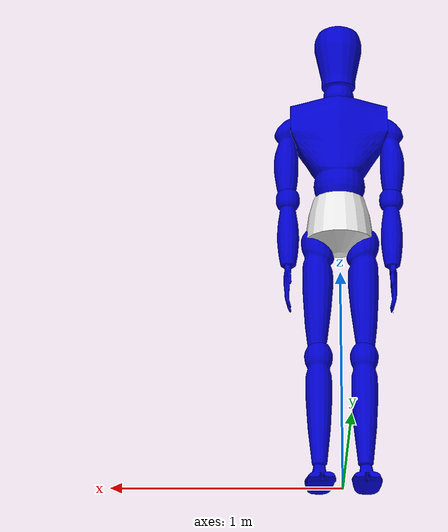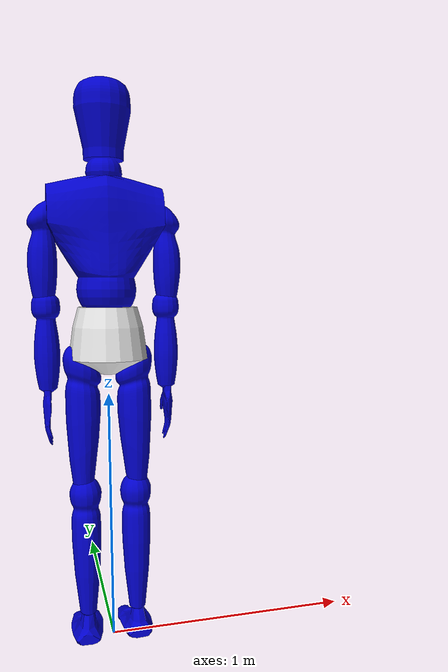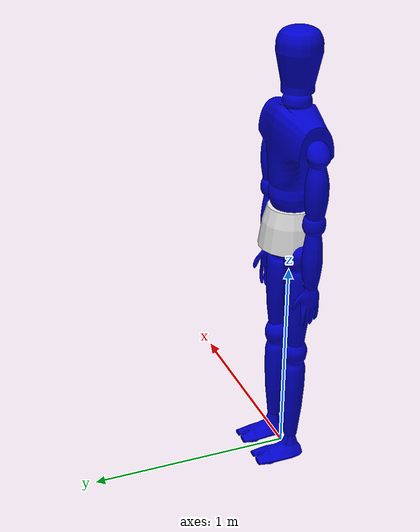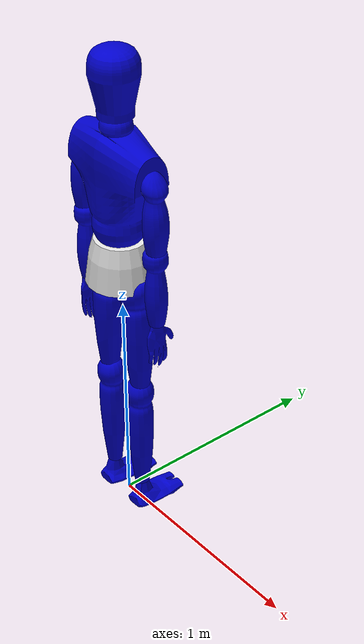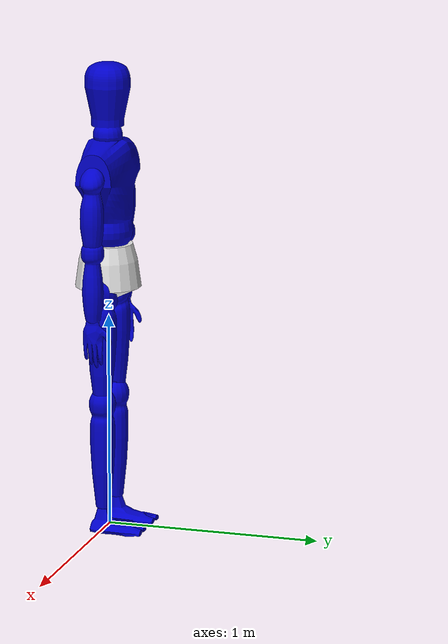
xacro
<?xml version="1.0"?>
<robot xmlns:sensor="http://playerstage.sourceforge.net/gazebo/xmlschema/#sensor"
       xmlns:controller="http://playerstage.sourceforge.net/gazebo/xmlschema/#controller"
       xmlns:interface="http://playerstage.sourceforge.net/gazebo/xmlschema/#interface"
       xmlns:xacro="http://playerstage.sourceforge.net/gazebo/xmlschema/#interface"
       name="human" >

  <material name="Blue">
    <color rgba="0.0 0.0 0.8 1.0"/>
  </material>
  <material name="Green">
    <color rgba="0.0 0.8 0.0 1.0"/>
  </material>
  <material name="Grey">
    <color rgba="0.7 0.7 0.7 1.0"/>
  </material>
  <material name="Grey2">
    <color rgba="0.9 0.9 0.9 1.0"/>
  </material>
  <material name="Red">
    <color rgba="0.8 0.0 0.0 1.0"/>
  </material>
  <material name="White">
    <color rgba="1.0 1.0 1.0 1.0"/>
  </material>
  <material name="Black">
    <color rgba="0.1 0.1 0.1 1.0"/>
  </material>
  <material name="LightGrey">
    <color rgba="0.6 0.6 0.6 1.0"/>
  </material>

  <link name="root_link"/>
  <link name="base_prismatic_dummy1"/>
  <link name="base_prismatic_dummy2"/>
  <joint name="base_prismatic_joint_x" type="prismatic">
    <axis xyz="1 0 0"/>
    <limit effort="10000" lower="-5.0" upper="5.0" velocity="0.6"/>
    <safety_controller k_position="100" k_velocity="2000000" soft_lower_limit="-4.9" soft_upper_limit="4.9"/>
    <calibration falling="0.00536"/>
    <dynamics damping="20000.0"/>
    <origin rpy="0 0 0" xyz="0 0 1.12"/>
    <parent link="root_link"/>
    <child link="base_prismatic_dummy1"/>
  </joint>
  <joint name="base_prismatic_joint_y" type="prismatic">
    <axis xyz="0 1 0"/>
    <limit effort="10000" lower="-5.0" upper="5.0" velocity="0.6"/>
    <safety_controller k_position="100" k_velocity="2000000" soft_lower_limit="-4.9" soft_upper_limit="4.9"/>
    <calibration falling="0.00536"/>
    <dynamics damping="20000.0"/>
    <origin rpy="0 0 0" xyz="0 0 0"/>
    <parent link="base_prismatic_dummy1"/>
    <child link="base_prismatic_dummy2"/>
  </joint>
  <joint name="base_rotate_joint" type="continuous">
    <axis xyz="0 0 1"/>
    <limit effort="30" velocity="3.6"/>
    <safety_controller k_velocity="1"/>
    <calibration rising="0.0"/>
    <dynamics damping="0.1"/>
    <origin rpy="0 0 0" xyz="0 0 0"/>
    <parent link="base_prismatic_dummy2"/>
    <child link="pelvis_link"/>
  </joint>

  <link name="pelvis_link">
    <visual>
      <origin rpy="0 0 0" xyz="0 0 0"/>
      <geometry>
        <mesh filename="package://human_description/meshes/pelvis.dae"/>
      </geometry>
      <material name="Grey2"/>
    </visual>
    <collision>
      <origin rpy="0 0 0" xyz="0 0 0"/>
      <geometry>
        <mesh filename="package://human_description/meshes/pelvis.dae"/>
      </geometry>
    </collision>
  </link>

  <joint name="torso_z_joint" type="revolute">
    <axis xyz="0 0 1"/>
    <limit effort="15" lower="-0.7" upper="0.7" velocity="5"/>
    <origin rpy="0 0 0" xyz="0 0 0.26"/>
    <parent link="pelvis_link"/>
    <child link="torso_z_link"/>
  </joint>
  <joint name="torso_y_joint" type="revolute">
    <axis xyz="0 1 0"/>
    <limit effort="15" lower="-0.3" upper="0.3" velocity="5"/>
    <origin rpy="0 0 0" xyz="0 0 0"/>
    <parent link="torso_z_link"/>
    <child link="torso_y_link"/>
  </joint>
  <joint name="torso_x_joint" type="revolute">
    <axis xyz="1 0 0"/>
    <limit effort="15" lower="-1.0" upper="0" velocity="5"/>
    <origin rpy="0 0 0" xyz="0 0 0"/>
    <parent link="torso_y_link"/>
    <child link="torso_x_link"/>
  </joint>

  <link name="torso_z_link"/>
  <link name="torso_y_link"/>
  <link name="torso_x_link">
    <visual>
      <origin rpy="0 0 0" xyz="0 0 0"/>
      <geometry>
        <mesh filename="package://human_description/meshes/torso.dae"/>
      </geometry>
      <material name="Blue"/>
    </visual>
    <collision>
      <origin rpy="0 0 0" xyz="0 0 0"/>
      <geometry>
        <mesh filename="package://human_description/meshes/torso.dae"/>
      </geometry>
    </collision>
  </link>

  <joint name="head_z_joint" type="revolute">
    <axis xyz="0 0 1"/>
    <limit effort="15" lower="-1.2" upper="1.2" velocity="5"/>
    <origin rpy="0 0 0" xyz="0 0 0.45"/>
    <parent link="torso_x_link"/>
    <child link="head_z_link"/>
  </joint>
  <joint name="head_y_joint" type="revolute">
    <axis xyz="0 1 0"/>
    <limit effort="15" lower="-0.8" upper="0.8" velocity="5"/>
    <origin rpy="0 0 0" xyz="0 0 0"/>
    <parent link="head_z_link"/>
    <child link="head_y_link"/>
  </joint>
  <joint name="head_x_joint" type="revolute">
    <axis xyz="1 0 0"/>
    <limit effort="15" lower="-1.57" upper="0.3" velocity="5"/>
    <origin rpy="0 0 0" xyz="0 0 0"/>
    <parent link="head_y_link"/>
    <child link="head_x_link"/>
  </joint>

  <link name="head_z_link"/>
  <link name="head_y_link"/>
  <link name="head_x_link">
    <visual>
      <origin rpy="0 0 0" xyz="0 0 0"/>
      <geometry>
        <mesh filename="package://human_description/meshes/head.dae"/>
      </geometry>
      <material name="Blue"/>
    </visual>
    <collision>
      <origin rpy="0 0 0" xyz="0 0 0"/>
      <geometry>
        <mesh filename="package://human_description/meshes/head.dae"/>
      </geometry>
    </collision>
  </link>

  <joint name="head_endeffector_joint" type="revolute">
    <axis xyz="0 0 1"/>
    <limit effort="15" lower="-0.001" upper="0.001" velocity="5"/>
    <origin rpy="0 0 0" xyz="0 0 0.3"/>
    <parent link="head_x_link"/>
    <child link="head_endeffector_link"/>
  </joint>

  <link name="head_endeffector_link">
    <visual>
      <origin rpy="0 0 0" xyz="0 0 0"/>
      <geometry>
        <box size="0.001 0.001 0.001"/>
      </geometry>
      <material name="Blue"/>
    </visual>
    <collision>
      <origin rpy="0 0 0" xyz="0 0 0"/>
      <geometry>
        <box size="0.001 0.001 0.001"/>
      </geometry>
    </collision>
  </link>

  <joint name="upper_left_leg_z_joint" type="revolute">
    <axis xyz="0 0 1"/>
    <limit effort="15" lower="-1.57" upper="1" velocity="5"/>
    <origin rpy="0 0 0" xyz="-0.1 0 0"/>
    <parent link="pelvis_link"/>
    <child link="upper_left_leg_z_link"/>
  </joint>
  <joint name="upper_left_leg_y_joint" type="revolute">
    <axis xyz="0 1 0"/>
    <limit effort="15" lower="-1.57" upper="0.7" velocity="5"/>
    <origin rpy="0 0 0" xyz="0 0 0"/>
    <parent link="upper_left_leg_z_link"/>
    <child link="upper_left_leg_y_link"/>
  </joint>
  <joint name="upper_left_leg_x_joint" type="revolute">
    <axis xyz="1 0 0"/>
    <limit effort="15" lower="-1.2" upper="1.57" velocity="5"/>
    <origin rpy="0 0 0" xyz="0 0 0"/>
    <parent link="upper_left_leg_y_link"/>
    <child link="upper_left_leg_x_link"/>
  </joint>

  <link name="upper_left_leg_z_link"/>
  <link name="upper_left_leg_y_link"/>
  <link name="upper_left_leg_x_link">
    <visual>
      <origin rpy="0 0 0" xyz="0 0 0"/>
      <geometry>
        <mesh filename="package://human_description/meshes/upperLeftLeg.dae"/>
      </geometry>
      <material name="Blue"/>
    </visual>
    <collision>
      <origin rpy="0 0 0" xyz="0 0 0"/>
      <geometry>
        <mesh filename="package://human_description/meshes/upperLeftLeg.dae"/>
      </geometry>
    </collision>
  </link>

  <joint name="lower_left_leg_joint" type="revolute">
    <axis xyz="1 0 0"/>
    <limit effort="15" lower="-2.4" upper="0" velocity="5"/>
    <origin rpy="0 0 0" xyz="0 0 -0.5"/>
    <parent link="upper_left_leg_x_link"/>
    <child link="lower_left_leg_link"/>
  </joint>

  <link name="lower_left_leg_link">
    <visual>
      <origin rpy="0 0 0" xyz="0 0 0"/>
      <geometry>
        <mesh filename="package://human_description/meshes/lowerLeftLeg.dae"/>
      </geometry>
      <material name="Blue"/>
    </visual>
    <collision>
      <origin rpy="0 0 0" xyz="0 0 0"/>
      <geometry>
        <mesh filename="package://human_description/meshes/lowerLeftLeg.dae"/>
      </geometry>
    </collision>
  </link>

  <joint name="left_foot_z_joint" type="revolute">
    <axis xyz="0 0 1"/>
    <limit effort="15" lower="-0.01" upper="0" velocity="5"/>
    <origin rpy="0 0 0" xyz="0 0 -0.52"/>
    <parent link="lower_left_leg_link"/>
    <child link="left_foot_z_link"/>
  </joint>
  <joint name="left_foot_y_joint" type="revolute">
    <axis xyz="0 1 0"/>
    <limit effort="15" lower="-0.5" upper="0.5" velocity="5"/>
    <origin rpy="0 0 0" xyz="0 0 0"/>
    <parent link="left_foot_z_link"/>
    <child link="left_foot_y_link"/>
  </joint>
  <joint name="left_foot_x_joint" type="revolute">
    <axis xyz="1 0 0"/>
    <limit effort="15" lower="-0.8" upper="0.6" velocity="5"/>
    <origin rpy="0 0 0" xyz="0 0 0"/>
    <parent link="left_foot_y_link"/>
    <child link="left_foot_x_link"/>
  </joint>

  <link name="left_foot_z_link"/>
  <link name="left_foot_y_link"/>
  <link name="left_foot_x_link">
    <visual>
      <origin rpy="0 0 0" xyz="0 0 0"/>
      <geometry>
        <mesh filename="package://human_description/meshes/leftFoot.dae"/>
      </geometry>
      <material name="Blue"/>
    </visual>
    <collision>
      <origin rpy="0 0 0" xyz="0 0 0"/>
      <geometry>
        <mesh filename="package://human_description/meshes/leftFoot.dae"/>
      </geometry>
    </collision>
  </link>

  <joint name="upper_right_leg_z_joint" type="revolute">
    <axis xyz="0 0 1"/>
    <limit effort="15" lower="-1" upper="1.57" velocity="5"/>
    <origin rpy="0 0 0" xyz="0.1 0 0"/>
    <parent link="pelvis_link"/>
    <child link="upper_right_leg_z_link"/>
  </joint>
  <joint name="upper_right_leg_y_joint" type="revolute">
    <axis xyz="0 1 0"/>
    <limit effort="15" lower="-0.7" upper="1.57" velocity="5"/>
    <origin rpy="0 0 0" xyz="0 0 0"/>
    <parent link="upper_right_leg_z_link"/>
    <child link="upper_right_leg_y_link"/>
  </joint>
  <joint name="upper_right_leg_x_joint" type="revolute">
    <axis xyz="1 0 0"/>
    <limit effort="15" lower="-1.2" upper="1.57" velocity="5"/>
    <origin rpy="0 0 0" xyz="0 0 0"/>
    <parent link="upper_right_leg_y_link"/>
    <child link="upper_right_leg_x_link"/>
  </joint>

  <link name="upper_right_leg_z_link"/>
  <link name="upper_right_leg_y_link"/>
  <link name="upper_right_leg_x_link">
    <visual>
      <origin rpy="0 0 0" xyz="0 0 0"/>
      <geometry>
        <mesh filename="package://human_description/meshes/upperRightLeg.dae"/>
      </geometry>
      <material name="Blue"/>
    </visual>
    <collision>
      <origin rpy="0 0 0" xyz="0 0 0"/>
      <geometry>
        <mesh filename="package://human_description/meshes/upperRightLeg.dae"/>
      </geometry>
    </collision>
  </link>

  <joint name="lower_right_leg_joint" type="revolute">
    <axis xyz="1 0 0"/>
    <limit effort="15" lower="-2.4" upper="0" velocity="5"/>
    <origin rpy="0 0 0" xyz="0 0 -0.5"/>
    <parent link="upper_right_leg_x_link"/>
    <child link="lower_right_leg_link"/>
  </joint>

  <link name="lower_right_leg_link">
    <visual>
      <origin rpy="0 0 0" xyz="0 0 0"/>
      <geometry>
        <mesh filename="package://human_description/meshes/lowerRightLeg.dae"/>
      </geometry>
      <material name="Blue"/>
    </visual>
    <collision>
      <origin rpy="0 0 0" xyz="0 0 0"/>
      <geometry>
        <mesh filename="package://human_description/meshes/lowerRightLeg.dae"/>
      </geometry>
    </collision>
  </link>

  <joint name="right_foot_z_joint" type="revolute">
    <axis xyz="0 0 1"/>
    <limit effort="15" lower="0" upper="0.001" velocity="5"/>
    <origin rpy="0 0 0" xyz="0 0 -0.52"/>
    <parent link="lower_right_leg_link"/>
    <child link="right_foot_z_link"/>
  </joint>
  <joint name="right_foot_y_joint" type="revolute">
    <axis xyz="0 1 0"/>
    <limit effort="15" lower="-0.5" upper="0.5" velocity="5"/>
    <origin rpy="0 0 0" xyz="0 0 0"/>
    <parent link="right_foot_z_link"/>
    <child link="right_foot_y_link"/>
  </joint>
  <joint name="right_foot_x_joint" type="revolute">
    <axis xyz="1 0 0"/>
    <limit effort="15" lower="-0.8" upper="0.6" velocity="5"/>
    <origin rpy="0 0 0" xyz="0 0 0"/>
    <parent link="right_foot_y_link"/>
    <child link="right_foot_x_link"/>
  </joint>

  <link name="right_foot_z_link"/>
  <link name="right_foot_y_link"/>
  <link name="right_foot_x_link">
    <visual>
      <origin rpy="0 0 0" xyz="0 0 0"/>
      <geometry>
        <mesh filename="package://human_description/meshes/rightFoot.dae"/>
      </geometry>
      <material name="Blue"/>
    </visual>
    <collision>
      <origin rpy="0 0 0" xyz="0 0 0"/>
      <geometry>
        <mesh filename="package://human_description/meshes/rightFoot.dae"/>
      </geometry>
    </collision>
  </link>

  <joint name="upper_left_arm_z_joint" type="revolute">
    <axis xyz="0 0 1"/>
    <limit effort="15" lower="-0.5" upper="0.5" velocity="5"/>
    <origin rpy="0 0 0" xyz="-0.23 0 0.33"/>
    <parent link="torso_x_link"/>
    <child link="upper_left_arm_z_link"/>
  </joint>
  <joint name="upper_left_arm_y_joint" type="revolute">
    <axis xyz="0 1 0"/>
    <limit effort="15" lower="-3.14" upper="2.0" velocity="5"/>
    <origin rpy="0 0 0" xyz="0 0 0"/>
    <parent link="upper_left_arm_z_link"/>
    <child link="upper_left_arm_y_link"/>
  </joint>
  <joint name="upper_left_arm_x_joint" type="revolute">
    <axis xyz="1 0 0"/>
    <limit effort="15" lower="-1.0" upper="3.14" velocity="5"/>
    <origin rpy="0 0 0" xyz="0 0 0"/>
    <parent link="upper_left_arm_y_link"/>
    <child link="upper_left_arm_x_link"/>
  </joint>

  <link name="upper_left_arm_z_link"/>
  <link name="upper_left_arm_y_link"/>
  <link name="upper_left_arm_x_link">
    <visual>
      <origin rpy="0 0 0" xyz="0 0 0"/>
      <geometry>
        <mesh filename="package://human_description/meshes/upperLeftArm.dae"/>
      </geometry>
      <material name="Blue"/>
    </visual>
    <collision>
      <origin rpy="0 0 0" xyz="0 0 0"/>
      <geometry>
        <mesh filename="package://human_description/meshes/upperLeftArm.dae"/>
      </geometry>
    </collision>
  </link>

  <joint name="lower_left_arm_joint" type="revolute">
    <axis xyz="1 0 0"/>
    <limit effort="15" lower="0" upper="3.14" velocity="5"/>
    <origin rpy="0 0 0" xyz="0 0 -0.35"/>
    <parent link="upper_left_arm_x_link"/>
    <child link="lower_left_arm_link"/>
  </joint>

  <link name="lower_left_arm_link">
    <visual>
      <origin rpy="0 0 0" xyz="0 0 0"/>
      <geometry>
        <mesh filename="package://human_description/meshes/lowerLeftArm.dae"/>
      </geometry>
      <material name="Blue"/>
    </visual>
    <collision>
      <origin rpy="0 0 0" xyz="0 0 0"/>
      <geometry>
        <mesh filename="package://human_description/meshes/lowerLeftArm.dae"/>
      </geometry>
    </collision>
  </link>

  <joint name="left_hand_z_joint" type="revolute">
    <axis xyz="0 0 1"/>
    <limit effort="15" lower="-1.0" upper="1.0" velocity="5"/>
    <origin rpy="0 0 0" xyz="0 0 -0.35"/>
    <parent link="lower_left_arm_link"/>
    <child link="left_hand_z_link"/>
  </joint>
  <joint name="left_hand_y_joint" type="revolute">
    <axis xyz="0 1 0"/>
    <limit effort="15" lower="-1.3" upper="1.5" velocity="5"/>
    <origin rpy="0 0 0" xyz="0 0 0"/>
    <parent link="left_hand_z_link"/>
    <child link="left_hand_y_link"/>
  </joint>
  <joint name="left_hand_x_joint" type="revolute">
    <axis xyz="1 0 0"/>
    <limit effort="15" lower="-0.5" upper="1.4" velocity="5"/>
    <origin rpy="0 0 0" xyz="0 0 0"/>
    <parent link="left_hand_y_link"/>
    <child link="left_hand_x_link"/>
  </joint>

  <link name="left_hand_z_link"/>
  <link name="left_hand_y_link"/>
  <link name="left_hand_x_link">
    <visual>
      <origin rpy="0 0 0" xyz="0 0 0"/>
      <geometry>
        <mesh filename="package://human_description/meshes/leftHand.dae"/>
      </geometry>
      <material name="Blue"/>
    </visual>
    <collision>
      <origin rpy="0 0 0" xyz="0 0 0"/>
      <geometry>
        <mesh filename="package://human_description/meshes/leftHand.dae"/>
      </geometry>
    </collision>
  </link>

  <joint name="left_hand_endeffector_joint" type="revolute">
    <axis xyz="0 0 1"/>
    <limit effort="15" lower="-0.001" upper="0.001" velocity="5"/>
    <origin rpy="0 0 0" xyz="0 0 -0.2"/>
    <parent link="left_hand_x_link"/>
    <child link="left_hand_endeffector_link"/>
  </joint>

  <link name="left_hand_endeffector_link">
    <visual>
      <origin rpy="0 0 0" xyz="0 0 0"/>
      <geometry>
        <box size="0.001 0.001 0.001"/>
      </geometry>
      <material name="Blue"/>
    </visual>
    <collision>
      <origin rpy="0 0 0" xyz="0 0 0"/>
      <geometry>
        <box size="0.001 0.001 0.001"/>
      </geometry>
    </collision>
  </link>

  <joint name="upper_right_arm_z_joint" type="revolute">
    <axis xyz="0 0 1"/>
    <limit effort="15" lower="-0.5" upper="0.5" velocity="5"/>
    <origin rpy="0 0 0" xyz="0.23 0 0.33"/>
    <parent link="torso_x_link"/>
    <child link="upper_right_arm_z_link"/>
  </joint>
  <joint name="upper_right_arm_y_joint" type="revolute">
    <axis xyz="0 1 0"/>
    <limit effort="15" lower="-2.0" upper="3.14" velocity="5"/>
    <origin rpy="0 0 0" xyz="0 0 0"/>
    <parent link="upper_right_arm_z_link"/>
    <child link="upper_right_arm_y_link"/>
  </joint>
  <joint name="upper_right_arm_x_joint" type="revolute">
    <axis xyz="1 0 0"/>
    <limit effort="15" lower="-1.0" upper="3.14" velocity="5"/>
    <origin rpy="0 0 0" xyz="0 0 0"/>
    <parent link="upper_right_arm_y_link"/>
    <child link="upper_right_arm_x_link"/>
  </joint>

  <link name="upper_right_arm_z_link"/>
  <link name="upper_right_arm_y_link"/>
  <link name="upper_right_arm_x_link">
    <visual>
      <origin rpy="0 0 0" xyz="0 0 0"/>
      <geometry>
        <mesh filename="package://human_description/meshes/upperRightArm.dae"/>
      </geometry>
      <material name="Blue"/>
    </visual>
    <collision>
      <origin rpy="0 0 0" xyz="0 0 0"/>
      <geometry>
        <mesh filename="package://human_description/meshes/upperRightArm.dae"/>
      </geometry>
    </collision>
  </link>

  <joint name="lower_right_arm_joint" type="revolute">
    <axis xyz="1 0 0"/>
    <limit effort="15" lower="0" upper="3.14" velocity="5"/>
    <origin rpy="0 0 0" xyz="0 0 -0.35"/>
    <parent link="upper_right_arm_x_link"/>
    <child link="lower_right_arm_link"/>
  </joint>

  <link name="lower_right_arm_link">
    <visual>
      <origin rpy="0 0 0" xyz="0 0 0"/>
      <geometry>
        <mesh filename="package://human_description/meshes/lowerRightArm.dae"/>
      </geometry>
      <material name="Blue"/>
    </visual>
    <collision>
      <origin rpy="0 0 0" xyz="0 0 0"/>
      <geometry>
        <mesh filename="package://human_description/meshes/lowerRightArm.dae"/>
      </geometry>
    </collision>
  </link>

  <joint name="right_hand_z_joint" type="revolute">
    <axis xyz="0 0 1"/>
    <limit effort="15" lower="-1.0" upper="1.0" velocity="5"/>
    <origin rpy="0 0 0" xyz="0 0 -0.35"/>
    <parent link="lower_right_arm_link"/>
    <child link="right_hand_z_link"/>
  </joint>
  <joint name="right_hand_y_joint" type="revolute">
    <axis xyz="0 1 0"/>
    <limit effort="15" lower="-1.5" upper="1.3" velocity="5"/>
    <origin rpy="0 0 0" xyz="0 0 0"/>
    <parent link="right_hand_z_link"/>
    <child link="right_hand_y_link"/>
  </joint>
  <joint name="right_hand_x_joint" type="revolute">
    <axis xyz="1 0 0"/>
    <limit effort="15" lower="-0.5" upper="1.4" velocity="5"/>
    <origin rpy="0 0 0" xyz="0 0 0"/>
    <parent link="right_hand_y_link"/>
    <child link="right_hand_x_link"/>
  </joint>

  <link name="right_hand_z_link"/>
  <link name="right_hand_y_link"/>
  <link name="right_hand_x_link">
    <visual>
      <origin rpy="0 0 0" xyz="0 0 0"/>
      <geometry>
        <mesh filename="package://human_description/meshes/rightHand.dae"/>
      </geometry>
      <material name="Blue"/>
    </visual>
    <collision>
      <origin rpy="0 0 0" xyz="0 0 0"/>
      <geometry>
        <mesh filename="package://human_description/meshes/rightHand.dae"/>
      </geometry>
    </collision>
  </link>

  <joint name="right_hand_endeffector_joint" type="revolute">
    <axis xyz="0 0 1"/>
    <limit effort="15" lower="-0.001" upper="0.001" velocity="5"/>
    <origin rpy="0 0 0" xyz="0 0 -0.2"/>
    <parent link="right_hand_x_link"/>
    <child link="right_hand_endeffector_link"/>
  </joint>

  <link name="right_hand_endeffector_link">
    <visual>
      <origin rpy="0 0 0" xyz="0 0 0"/>
      <geometry>
        <box size="0.001 0.001 0.001"/>
      </geometry>
      <material name="Blue"/>
    </visual>
    <collision>
      <origin rpy="0 0 0" xyz="0 0 0"/>
      <geometry>
        <box size="0.001 0.001 0.001"/>
      </geometry>
    </collision>
  </link>

</robot>
